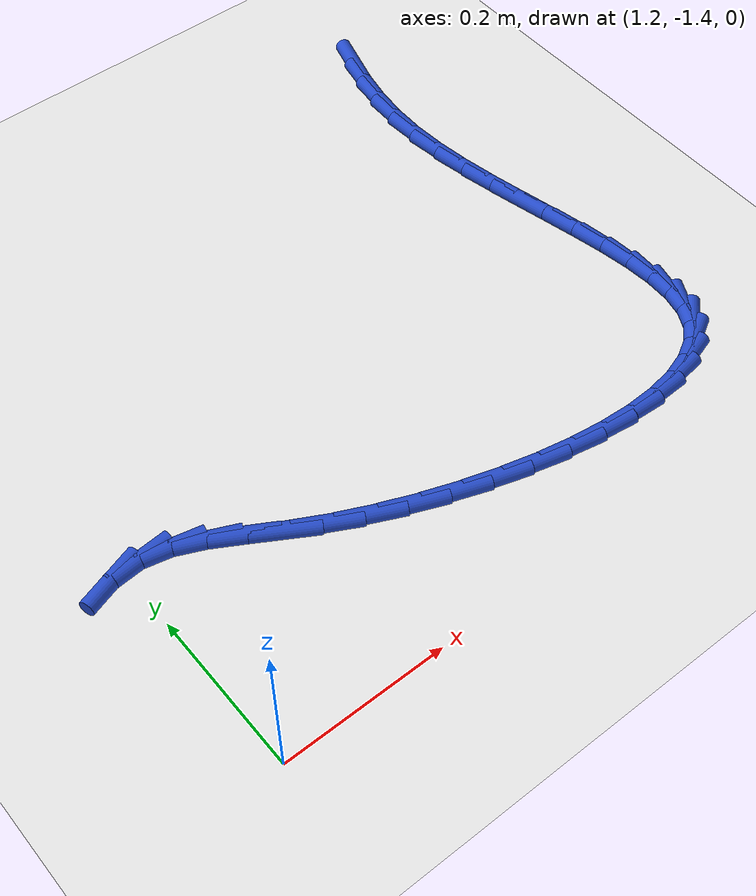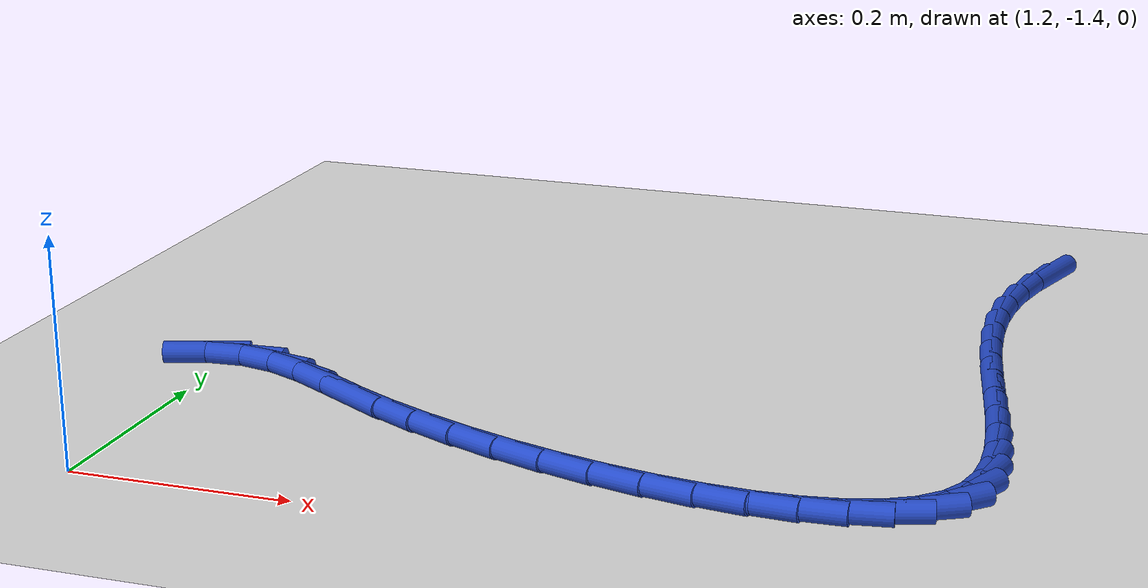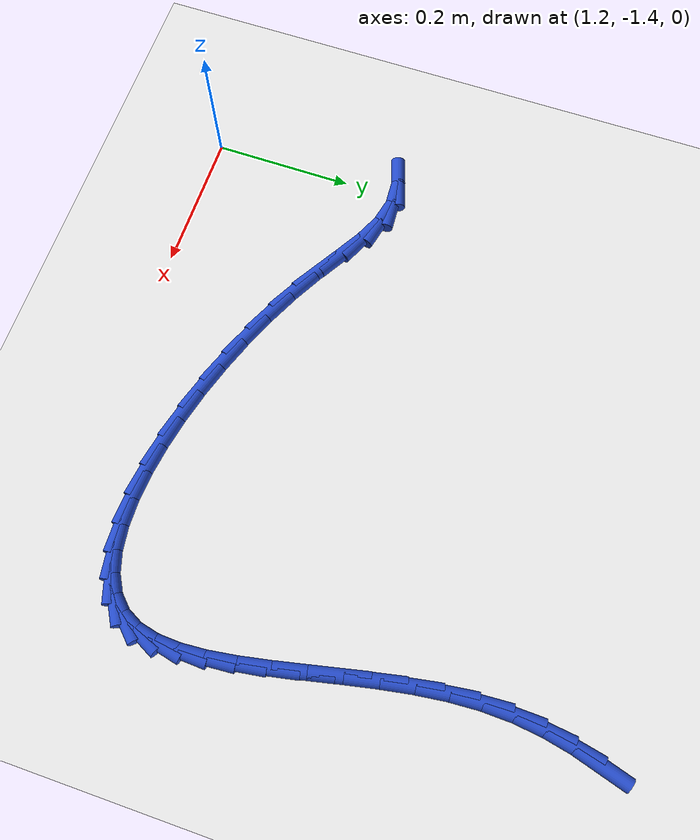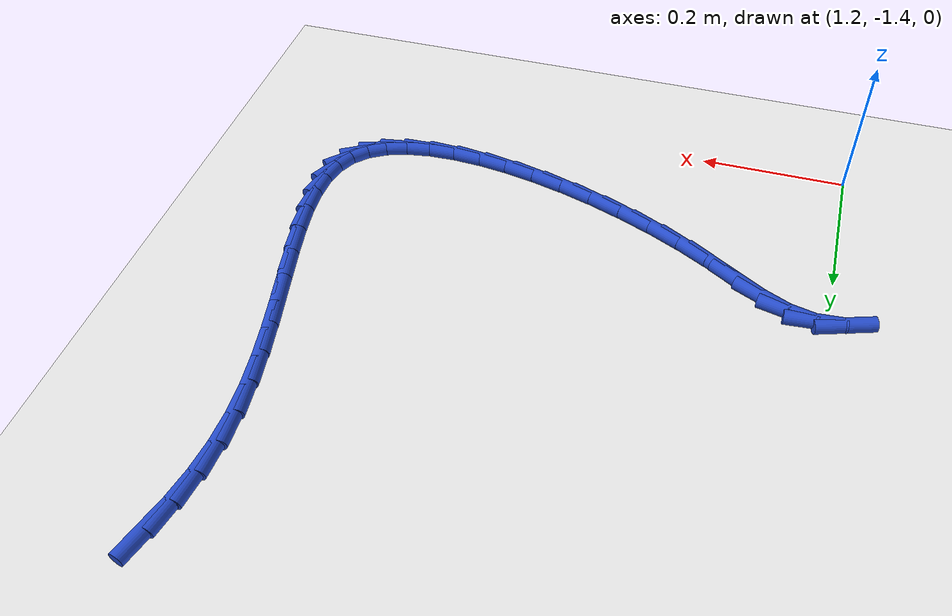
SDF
<sdf version="1.6">
 <world name="default">
  <model name="ground_plane">
   <static>1</static>
   <link name="link">
    <collision name="collision">
     <geometry><plane><normal>0 0 1</normal><size>100 100</size></plane></geometry>
     <surface><friction><ode><mu>100</mu><mu2>50</mu2></ode></friction></surface>
    </collision>
    <visual name="visual">
     <cast_shadows>0</cast_shadows>
     <geometry><plane><normal>0 0 1</normal><size>100 100</size></plane></geometry>
     <material>
      <script><uri>file://media/materials/scripts/gazebo.material</uri><name>Gazebo/WhiteGlow</name></script>
     </material>
    </visual>
   </link>
  </model>
  <model name="line">
   <link name="link_122">
    <pose>1.8795150227066955 -0.6413758460747322 0.01 0 1.57 1.2895593004438881</pose>
    <collision name="collision">
     <geometry><cylinder><radius>0.01</radius><length>0.08</length></cylinder></geometry>
    </collision>
    <visual name="visual">
     <material>
      <script><name>Gazebo/Blue</name><uri>file://media/materials/scripts/gazebo.material</uri></script>
     </material>
     <geometry><cylinder><radius>0.01</radius><length>0.08</length></cylinder></geometry>
    </visual>
   </link>
   <link name="link_123">
    <pose>1.8686393291697143 -0.6790217963940044 0.01 0 1.57 1.3708145627698118</pose>
    <collision name="collision">
     <geometry><cylinder><radius>0.01</radius><length>0.08</length></cylinder></geometry>
    </collision>
    <visual name="visual">
     <material>
      <script><name>Gazebo/Blue</name><uri>file://media/materials/scripts/gazebo.material</uri></script>
     </material>
     <geometry><cylinder><radius>0.01</radius><length>0.08</length></cylinder></geometry>
    </visual>
   </link>
   <link name="link_124">
    <pose>1.8607486328184288 -0.7179514696136595 0.01 0 1.57 1.4570623669162293</pose>
    <collision name="collision">
     <geometry><cylinder><radius>0.01</radius><length>0.08</length></cylinder></geometry>
    </collision>
    <visual name="visual">
     <material>
      <script><name>Gazebo/Blue</name><uri>file://media/materials/scripts/gazebo.material</uri></script>
     </material>
     <geometry><cylinder><radius>0.01</radius><length>0.08</length></cylinder></geometry>
    </visual>
   </link>
   <link name="link_125">
    <pose>1.856146190401546 -0.7582435728265526 0.01 0 1.57 1.5465774053135357</pose>
    <collision name="collision">
     <geometry><cylinder><radius>0.01</radius><length>0.08</length></cylinder></geometry>
    </collision>
    <visual name="visual">
     <material>
      <script><name>Gazebo/Blue</name><uri>file://media/materials/scripts/gazebo.material</uri></script>
     </material>
     <geometry><cylinder><radius>0.01</radius><length>0.08</length></cylinder></geometry>
    </visual>
   </link>
   <link name="link_126">
    <pose>1.8551352586677747 -0.7999768131255364 0.01 0 1.57 -1.5079171805154374</pose>
    <collision name="collision">
     <geometry><cylinder><radius>0.01</radius><length>0.08</length></cylinder></geometry>
    </collision>
    <visual name="visual">
     <material>
      <script><name>Gazebo/Blue</name><uri>file://media/materials/scripts/gazebo.material</uri></script>
     </material>
     <geometry><cylinder><radius>0.01</radius><length>0.08</length></cylinder></geometry>
    </visual>
   </link>
   <link name="link_127">
    <pose>1.8578529845594405 -0.8431412537708289 0.01 0 1.57 -1.4403223773209388</pose>
    <collision name="collision">
     <geometry><cylinder><radius>0.01</radius><length>0.08</length></cylinder></geometry>
    </collision>
    <visual name="visual">
     <material>
      <script><name>Gazebo/Blue</name><uri>file://media/materials/scripts/gazebo.material</uri></script>
     </material>
     <geometry><cylinder><radius>0.01</radius><length>0.08</length></cylinder></geometry>
    </visual>
   </link>
   <link name="link_128">
    <pose>1.8636482992652592 -0.8873063298438125 0.01 0 1.57 -1.3936070382885979</pose>
    <collision name="collision">
     <geometry><cylinder><radius>0.01</radius><length>0.08</length></cylinder></geometry>
    </collision>
    <visual name="visual">
     <material>
      <script><name>Gazebo/Blue</name><uri>file://media/materials/scripts/gazebo.material</uri></script>
     </material>
     <geometry><cylinder><radius>0.01</radius><length>0.08</length></cylinder></geometry>
    </visual>
   </link>
   <link name="link_129">
    <pose>1.871636579654308 -0.931916841098958 0.01 0 1.57 -1.364849619592376</pose>
    <collision name="collision">
     <geometry><cylinder><radius>0.01</radius><length>0.08</length></cylinder></geometry>
    </collision>
    <visual name="visual">
     <material>
      <script><name>Gazebo/Blue</name><uri>file://media/materials/scripts/gazebo.material</uri></script>
     </material>
     <geometry><cylinder><radius>0.01</radius><length>0.08</length></cylinder></geometry>
    </visual>
   </link>
   <link name="link_130">
    <pose>1.8809331662443016 -0.976417567891977 0.01 0 1.57 -1.3525847794152384</pose>
    <collision name="collision">
     <geometry><cylinder><radius>0.01</radius><length>0.08</length></cylinder></geometry>
    </collision>
    <visual name="visual">
     <material>
      <script><name>Gazebo/Blue</name><uri>file://media/materials/scripts/gazebo.material</uri></script>
     </material>
     <geometry><cylinder><radius>0.01</radius><length>0.08</length></cylinder></geometry>
    </visual>
   </link>
   <link name="link_131">
    <pose>1.8906533995529538 -1.0202532905785804 0.01 0 1.57 -1.356848090845197</pose>
    <collision name="collision">
     <geometry><cylinder><radius>0.01</radius><length>0.08</length></cylinder></geometry>
    </collision>
    <visual name="visual">
     <material>
      <script><name>Gazebo/Blue</name><uri>file://media/materials/scripts/gazebo.material</uri></script>
     </material>
     <geometry><cylinder><radius>0.01</radius><length>0.08</length></cylinder></geometry>
    </visual>
   </link>
   <link name="link_132">
    <pose>1.899912620097979 -1.0628687895144806 0.01 0 1.57 -1.3793989557982413</pose>
    <collision name="collision">
     <geometry><cylinder><radius>0.01</radius><length>0.08</length></cylinder></geometry>
    </collision>
    <visual name="visual">
     <material>
      <script><name>Gazebo/Blue</name><uri>file://media/materials/scripts/gazebo.material</uri></script>
     </material>
     <geometry><cylinder><radius>0.01</radius><length>0.08</length></cylinder></geometry>
    </visual>
   </link>
   <link name="link_133">
    <pose>1.9078261683970925 -1.1037088450553874 0.01 0 1.57 -1.424273952636394</pose>
    <collision name="collision">
     <geometry><cylinder><radius>0.01</radius><length>0.08</length></cylinder></geometry>
    </collision>
    <visual name="visual">
     <material>
      <script><name>Gazebo/Blue</name><uri>file://media/materials/scripts/gazebo.material</uri></script>
     </material>
     <geometry><cylinder><radius>0.01</radius><length>0.08</length></cylinder></geometry>
    </visual>
   </link>
   <link name="link_134">
    <pose>1.9135093849680083 -1.1422182375570131 0.01 0 1.57 -1.4988272882527787</pose>
    <collision name="collision">
     <geometry><cylinder><radius>0.01</radius><length>0.08</length></cylinder></geometry>
    </collision>
    <visual name="visual">
     <material>
      <script><name>Gazebo/Blue</name><uri>file://media/materials/scripts/gazebo.material</uri></script>
     </material>
     <geometry><cylinder><radius>0.01</radius><length>0.08</length></cylinder></geometry>
    </visual>
   </link>
   <link name="link_135">
    <pose>1.91607761032844 -1.177841747375069 0.01 0 1.57 1.5263471194357092</pose>
    <collision name="collision">
     <geometry><cylinder><radius>0.01</radius><length>0.08</length></cylinder></geometry>
    </collision>
    <visual name="visual">
     <material>
      <script><name>Gazebo/Blue</name><uri>file://media/materials/scripts/gazebo.material</uri></script>
     </material>
     <geometry><cylinder><radius>0.01</radius><length>0.08</length></cylinder></geometry>
    </visual>
   </link>
   <link name="link_136">
    <pose>1.9146461849961034 -1.2100241548652668 0.01 0 1.57 1.3503645681421497</pose>
    <collision name="collision">
     <geometry><cylinder><radius>0.01</radius><length>0.08</length></cylinder></geometry>
    </collision>
    <visual name="visual">
     <material>
      <script><name>Gazebo/Blue</name><uri>file://media/materials/scripts/gazebo.material</uri></script>
     </material>
     <geometry><cylinder><radius>0.01</radius><length>0.08</length></cylinder></geometry>
    </visual>
   </link>
   <link name="link_137">
    <pose>1.9083304494887128 -1.238210240383318 0.01 0 1.57 1.098137972252773</pose>
    <collision name="collision">
     <geometry><cylinder><radius>0.01</radius><length>0.08</length></cylinder></geometry>
    </collision>
    <visual name="visual">
     <material>
      <script><name>Gazebo/Blue</name><uri>file://media/materials/scripts/gazebo.material</uri></script>
     </material>
     <geometry><cylinder><radius>0.01</radius><length>0.08</length></cylinder></geometry>
    </visual>
   </link>
   <link name="link_138">
    <pose>1.8962457562069759 -1.2618447905406187 0.01 0 1.57 0.7918258009911463</pose>
    <collision name="collision">
     <geometry><cylinder><radius>0.01</radius><length>0.08</length></cylinder></geometry>
    </collision>
    <visual name="visual">
     <material>
      <script><name>Gazebo/Blue</name><uri>file://media/materials/scripts/gazebo.material</uri></script>
     </material>
     <geometry><cylinder><radius>0.01</radius><length>0.08</length></cylinder></geometry>
    </visual>
   </link>
   <link name="link_139">
    <pose>1.877801696347849 -1.280527491046853 0.01 0 1.57 0.5185716296185924</pose>
    <collision name="collision">
     <geometry><cylinder><radius>0.01</radius><length>0.08</length></cylinder></geometry>
    </collision>
    <visual name="visual">
     <material>
      <script><name>Gazebo/Blue</name><uri>file://media/materials/scripts/gazebo.material</uri></script>
     </material>
     <geometry><cylinder><radius>0.01</radius><length>0.08</length></cylinder></geometry>
    </visual>
   </link>
   <link name="link_140">
    <pose>1.8534659903797845 -1.2944150692803107 0.01 0 1.57 0.3074693601593848</pose>
    <collision name="collision">
     <geometry><cylinder><radius>0.01</radius><length>0.08</length></cylinder></geometry>
    </collision>
    <visual name="visual">
     <material>
      <script><name>Gazebo/Blue</name><uri>file://media/materials/scripts/gazebo.material</uri></script>
     </material>
     <geometry><cylinder><radius>0.01</radius><length>0.08</length></cylinder></geometry>
    </visual>
   </link>
   <link name="link_141">
    <pose>1.8239441296398968 -1.3037894247367054 0.01 0 1.57 0.15011654084649578</pose>
    <collision name="collision">
     <geometry><cylinder><radius>0.01</radius><length>0.08</length></cylinder></geometry>
    </collision>
    <visual name="visual">
     <material>
      <script><name>Gazebo/Blue</name><uri>file://media/materials/scripts/gazebo.material</uri></script>
     </material>
     <geometry><cylinder><radius>0.01</radius><length>0.08</length></cylinder></geometry>
    </visual>
   </link>
   <link name="link_142">
    <pose>1.7899416054652997 -1.3089324569117522 0.01 0 1.57 0.031585076894051926</pose>
    <collision name="collision">
     <geometry><cylinder><radius>0.01</radius><length>0.08</length></cylinder></geometry>
    </collision>
    <visual name="visual">
     <material>
      <script><name>Gazebo/Blue</name><uri>file://media/materials/scripts/gazebo.material</uri></script>
     </material>
     <geometry><cylinder><radius>0.01</radius><length>0.08</length></cylinder></geometry>
    </visual>
   </link>
   <link name="link_143">
    <pose>1.7521639091931045 -1.3101260653011635 0.01 0 1.57 -0.06049097544344686</pose>
    <collision name="collision">
     <geometry><cylinder><radius>0.01</radius><length>0.08</length></cylinder></geometry>
    </collision>
    <visual name="visual">
     <material>
      <script><name>Gazebo/Blue</name><uri>file://media/materials/scripts/gazebo.material</uri></script>
     </material>
     <geometry><cylinder><radius>0.01</radius><length>0.08</length></cylinder></geometry>
    </visual>
   </link>
   <link name="link_144">
    <pose>1.7113165321604256 -1.3076521494006537 0.01 0 1.57 -0.13477912982649215</pose>
    <collision name="collision">
     <geometry><cylinder><radius>0.01</radius><length>0.08</length></cylinder></geometry>
    </collision>
    <visual name="visual">
     <material>
      <script><name>Gazebo/Blue</name><uri>file://media/materials/scripts/gazebo.material</uri></script>
     </material>
     <geometry><cylinder><radius>0.01</radius><length>0.08</length></cylinder></geometry>
    </visual>
   </link>
   <link name="link_145">
    <pose>1.668104965704375 -1.301792608705937 0.01 0 1.57 -0.19716439309944667</pose>
    <collision name="collision">
     <geometry><cylinder><radius>0.01</radius><length>0.08</length></cylinder></geometry>
    </collision>
    <visual name="visual">
     <material>
      <script><name>Gazebo/Blue</name><uri>file://media/materials/scripts/gazebo.material</uri></script>
     </material>
     <geometry><cylinder><radius>0.01</radius><length>0.08</length></cylinder></geometry>
    </visual>
   </link>
   <link name="link_146">
    <pose>1.623234701162068 -1.2928293427127278 0.01 0 1.57 -0.25172913880484366</pose>
    <collision name="collision">
     <geometry><cylinder><radius>0.01</radius><length>0.08</length></cylinder></geometry>
    </collision>
    <visual name="visual">
     <material>
      <script><name>Gazebo/Blue</name><uri>file://media/materials/scripts/gazebo.material</uri></script>
     </material>
     <geometry><cylinder><radius>0.01</radius><length>0.08</length></cylinder></geometry>
    </visual>
   </link>
   <link name="link_147">
    <pose>1.5774112298706167 -1.2810442509167395 0.01 0 1.57 -0.3014559682620691</pose>
    <collision name="collision">
     <geometry><cylinder><radius>0.01</radius><length>0.08</length></cylinder></geometry>
    </collision>
    <visual name="visual">
     <material>
      <script><name>Gazebo/Blue</name><uri>file://media/materials/scripts/gazebo.material</uri></script>
     </material>
     <geometry><cylinder><radius>0.01</radius><length>0.08</length></cylinder></geometry>
    </visual>
   </link>
   <link name="link_148">
    <pose>1.5313400431671338 -1.2667192328136856 0.01 0 1.57 -0.3487003285444537</pose>
    <collision name="collision">
     <geometry><cylinder><radius>0.01</radius><length>0.08</length></cylinder></geometry>
    </collision>
    <visual name="visual">
     <material>
      <script><name>Gazebo/Blue</name><uri>file://media/materials/scripts/gazebo.material</uri></script>
     </material>
     <geometry><cylinder><radius>0.01</radius><length>0.08</length></cylinder></geometry>
    </visual>
   </link>
   <link name="link_149">
    <pose>1.4857266323887326 -1.2501361878992807 0.01 0 1.57 -0.3955246726697801</pose>
    <collision name="collision">
     <geometry><cylinder><radius>0.01</radius><length>0.08</length></cylinder></geometry>
    </collision>
    <visual name="visual">
     <material>
      <script><name>Gazebo/Blue</name><uri>file://media/materials/scripts/gazebo.material</uri></script>
     </material>
     <geometry><cylinder><radius>0.01</radius><length>0.08</length></cylinder></geometry>
    </visual>
   </link>
   <link name="link_150">
    <pose>1.441276488872527 -1.231577015669239 0.01 0 1.57 -0.4439702003801803</pose>
    <collision name="collision">
     <geometry><cylinder><radius>0.01</radius><length>0.08</length></cylinder></geometry>
    </collision>
    <visual name="visual">
     <material>
      <script><name>Gazebo/Blue</name><uri>file://media/materials/scripts/gazebo.material</uri></script>
     </material>
     <geometry><cylinder><radius>0.01</radius><length>0.08</length></cylinder></geometry>
    </visual>
   </link>
   <link name="link_151">
    <pose>1.398695103955628 -1.2113236156192728 0.01 0 1.57 -0.496329927362633</pose>
    <collision name="collision">
     <geometry><cylinder><radius>0.01</radius><length>0.08</length></cylinder></geometry>
    </collision>
    <visual name="visual">
     <material>
      <script><name>Gazebo/Blue</name><uri>file://media/materials/scripts/gazebo.material</uri></script>
     </material>
     <geometry><cylinder><radius>0.01</radius><length>0.08</length></cylinder></geometry>
    </visual>
   </link>
   <link name="link_152">
    <pose>1.3586879689751514 -1.1896578872450982 0.01 0 1.57 -0.5435485812041634</pose>
    <collision name="collision">
     <geometry><cylinder><radius>0.01</radius><length>0.08</length></cylinder></geometry>
    </collision>
    <visual name="visual">
     <material>
      <script><name>Gazebo/Blue</name><uri>file://media/materials/scripts/gazebo.material</uri></script>
     </material>
     <geometry><cylinder><radius>0.01</radius><length>0.08</length></cylinder></geometry>
    </visual>
   </link>
   <link name="link_153">
    <pose>1.3216589318257255 -1.1672825891147898 0.01 0 1.57 -0.531457122475976</pose>
    <collision name="collision">
     <geometry><cylinder><radius>0.01</radius><length>0.08</length></cylinder></geometry>
    </collision>
    <visual name="visual">
     <material>
      <script><name>Gazebo/Blue</name><uri>file://media/materials/scripts/gazebo.material</uri></script>
     </material>
     <geometry><cylinder><radius>0.01</radius><length>0.08</length></cylinder></geometry>
    </visual>
   </link>
   <link name="link_154">
    <pose>1.286699856501851 -1.1467309864456448 0.01 0 1.57 -0.4308079994187992</pose>
    <collision name="collision">
     <geometry><cylinder><radius>0.01</radius><length>0.08</length></cylinder></geometry>
    </collision>
    <visual name="visual">
     <material>
      <script><name>Gazebo/Blue</name><uri>file://media/materials/scripts/gazebo.material</uri></script>
     </material>
     <geometry><cylinder><radius>0.01</radius><length>0.08</length></cylinder></geometry>
    </visual>
   </link>
   <link name="link_155">
    <pose>1.252545996270247 -1.131033895002896 0.01 0 1.57 -0.22196715153451288</pose>
    <collision name="collision">
     <geometry><cylinder><radius>0.01</radius><length>0.08</length></cylinder></geometry>
    </collision>
    <visual name="visual">
     <material>
      <script><name>Gazebo/Blue</name><uri>file://media/materials/scripts/gazebo.material</uri></script>
     </material>
     <geometry><cylinder><radius>0.01</radius><length>0.08</length></cylinder></geometry>
    </visual>
   </link>
   <link name="link_156">
    <pose>1.2179325972615591 -1.1232221405081706 0.01 0 1.57 0.07065304472323601</pose>
    <collision name="collision">
     <geometry><cylinder><radius>0.01</radius><length>0.08</length></cylinder></geometry>
    </collision>
    <visual name="visual">
     <material>
      <script><name>Gazebo/Blue</name><uri>file://media/materials/scripts/gazebo.material</uri></script>
     </material>
     <geometry><cylinder><radius>0.01</radius><length>0.08</length></cylinder></geometry>
    </visual>
   </link>
   <link name="link_157">
    <pose>1.1817909363686574 -1.125779916322034 0.01 0 1.57 0.31195873572671995</pose>
    <collision name="collision">
     <geometry><cylinder><radius>0.01</radius><length>0.08</length></cylinder></geometry>
    </collision>
    <visual name="visual">
     <material>
      <script><name>Gazebo/Blue</name><uri>file://media/materials/scripts/gazebo.material</uri></script>
     </material>
     <geometry><cylinder><radius>0.01</radius><length>0.08</length></cylinder></geometry>
    </visual>
   </link>
  </model>
 </world>
</sdf>
